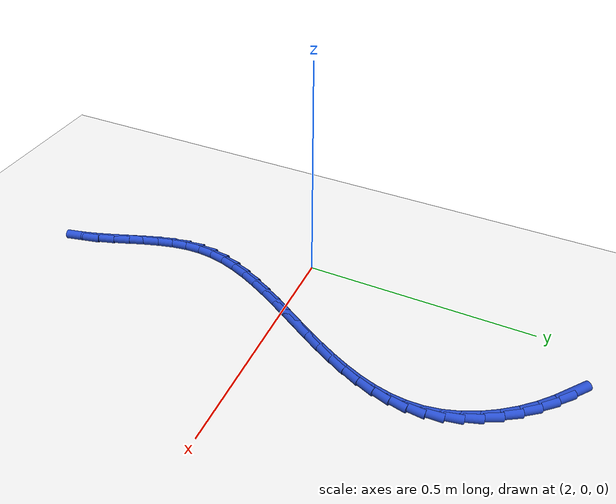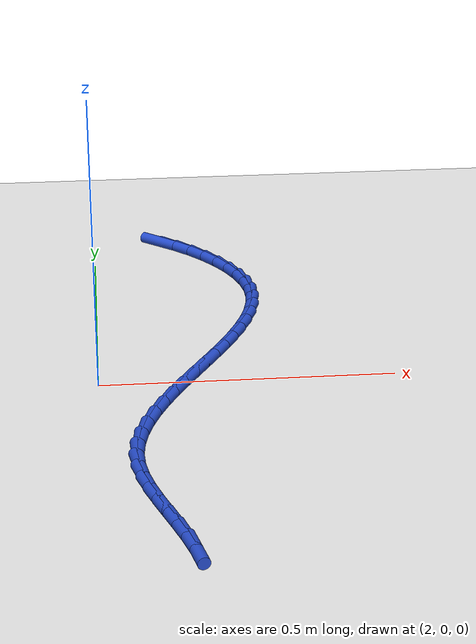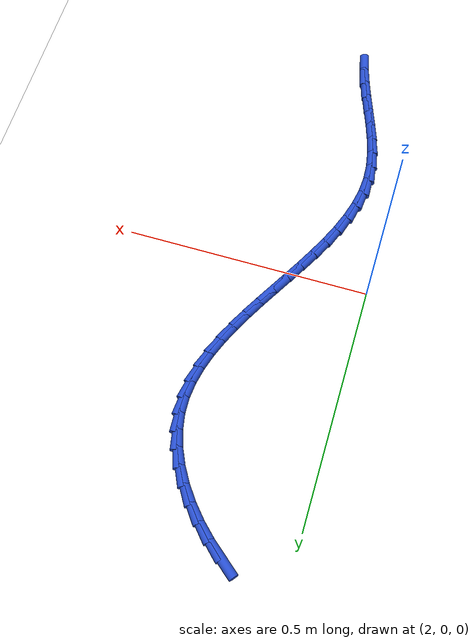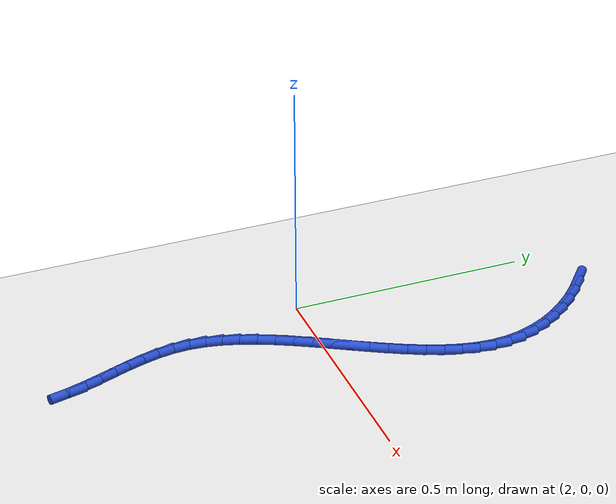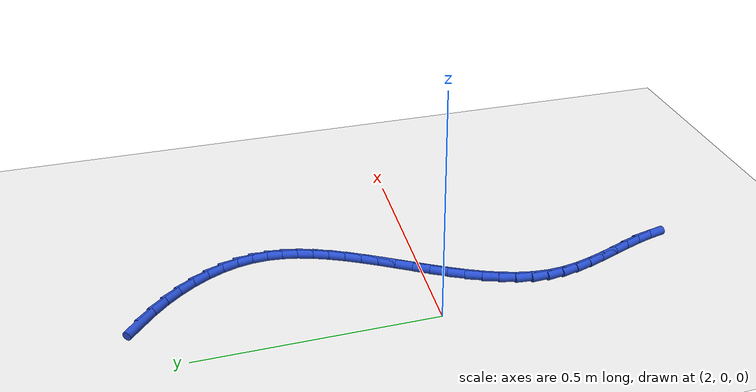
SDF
<sdf version="1.6">
 <world name="default">
  <model name="ground_plane">
   <static>1</static>
   <link name="link">
    <collision name="collision">
     <geometry><plane><normal>0 0 1</normal><size>100 100</size></plane></geometry>
     <surface><friction><ode><mu>100</mu><mu2>50</mu2></ode></friction></surface>
    </collision>
    <visual name="visual">
     <cast_shadows>0</cast_shadows>
     <geometry><plane><normal>0 0 1</normal><size>100 100</size></plane></geometry>
     <material>
      <script><uri>file://media/materials/scripts/gazebo.material</uri><name>Gazebo/WhiteGlow</name></script>
     </material>
    </visual>
   </link>
  </model>
  <model name="line">
   <link name="link_88">
    <pose>2.1271785474607925 0.5868382874427128 0.01 0 1.57 -0.688596215068687</pose>
    <collision name="collision">
     <geometry><cylinder><radius>0.01</radius><length>0.08</length></cylinder></geometry>
    </collision>
    <visual name="visual">
     <material>
      <script><name>Gazebo/Blue</name><uri>file://media/materials/scripts/gazebo.material</uri></script>
     </material>
     <geometry><cylinder><radius>0.01</radius><length>0.08</length></cylinder></geometry>
    </visual>
   </link>
   <link name="link_89">
    <pose>2.1564742898244362 0.5627285119569525 0.01 0 1.57 -0.7649621310855835</pose>
    <collision name="collision">
     <geometry><cylinder><radius>0.01</radius><length>0.08</length></cylinder></geometry>
    </collision>
    <visual name="visual">
     <material>
      <script><name>Gazebo/Blue</name><uri>file://media/materials/scripts/gazebo.material</uri></script>
     </material>
     <geometry><cylinder><radius>0.01</radius><length>0.08</length></cylinder></geometry>
    </visual>
   </link>
   <link name="link_90">
    <pose>2.183848967723012 0.5364504361298772 0.01 0 1.57 -0.8485032546470809</pose>
    <collision name="collision">
     <geometry><cylinder><radius>0.01</radius><length>0.08</length></cylinder></geometry>
    </collision>
    <visual name="visual">
     <material>
      <script><name>Gazebo/Blue</name><uri>file://media/materials/scripts/gazebo.material</uri></script>
     </material>
     <geometry><cylinder><radius>0.01</radius><length>0.08</length></cylinder></geometry>
    </visual>
   </link>
   <link name="link_91">
    <pose>2.208799267518622 0.5081342828745077 0.01 0 1.57 -0.9362140040301882</pose>
    <collision name="collision">
     <geometry><cylinder><radius>0.01</radius><length>0.08</length></cylinder></geometry>
    </collision>
    <visual name="visual">
     <material>
      <script><name>Gazebo/Blue</name><uri>file://media/materials/scripts/gazebo.material</uri></script>
     </material>
     <geometry><cylinder><radius>0.01</radius><length>0.08</length></cylinder></geometry>
    </visual>
   </link>
   <link name="link_92">
    <pose>2.2308876754935523 0.47812924441498517 0.01 0 1.57 -1.030789057519459</pose>
    <collision name="collision">
     <geometry><cylinder><radius>0.01</radius><length>0.08</length></cylinder></geometry>
    </collision>
    <visual name="visual">
     <material>
      <script><name>Gazebo/Blue</name><uri>file://media/materials/scripts/gazebo.material</uri></script>
     </material>
     <geometry><cylinder><radius>0.01</radius><length>0.08</length></cylinder></geometry>
    </visual>
   </link>
   <link name="link_93">
    <pose>2.249676767366114 0.44678481060111047 0.01 0 1.57 -1.135109411028016</pose>
    <collision name="collision">
     <geometry><cylinder><radius>0.01</radius><length>0.08</length></cylinder></geometry>
    </collision>
    <visual name="visual">
     <material>
      <script><name>Gazebo/Blue</name><uri>file://media/materials/scripts/gazebo.material</uri></script>
     </material>
     <geometry><cylinder><radius>0.01</radius><length>0.08</length></cylinder></geometry>
    </visual>
   </link>
   <link name="link_94">
    <pose>2.2647291188546195 0.4144504712826833 0.01 0 1.57 -1.2521440039129987</pose>
    <collision name="collision">
     <geometry><cylinder><radius>0.01</radius><length>0.08</length></cylinder></geometry>
    </collision>
    <visual name="visual">
     <material>
      <script><name>Gazebo/Blue</name><uri>file://media/materials/scripts/gazebo.material</uri></script>
     </material>
     <geometry><cylinder><radius>0.01</radius><length>0.08</length></cylinder></geometry>
    </visual>
   </link>
   <link name="link_95">
    <pose>2.27560730567738 0.3814757163095041 0.01 0 1.57 -1.3845808456315494</pose>
    <collision name="collision">
     <geometry><cylinder><radius>0.01</radius><length>0.08</length></cylinder></geometry>
    </collision>
    <visual name="visual">
     <material>
      <script><name>Gazebo/Blue</name><uri>file://media/materials/scripts/gazebo.material</uri></script>
     </material>
     <geometry><cylinder><radius>0.01</radius><length>0.08</length></cylinder></geometry>
    </visual>
   </link>
   <link name="link_96">
    <pose>2.2818745440784545 0.34820979774798516 0.01 0 1.57 -1.5268475022962134</pose>
    <collision name="collision">
     <geometry><cylinder><radius>0.01</radius><length>0.08</length></cylinder></geometry>
    </collision>
    <visual name="visual">
     <material>
      <script><name>Gazebo/Blue</name><uri>file://media/materials/scripts/gazebo.material</uri></script>
     </material>
     <geometry><cylinder><radius>0.01</radius><length>0.08</length></cylinder></geometry>
    </visual>
   </link>
   <link name="link_97">
    <pose>2.283338927330215 0.31491106157744253 0.01 0 1.57 1.4834201986905355</pose>
    <collision name="collision">
     <geometry><cylinder><radius>0.01</radius><length>0.08</length></cylinder></geometry>
    </collision>
    <visual name="visual">
     <material>
      <script><name>Gazebo/Blue</name><uri>file://media/materials/scripts/gazebo.material</uri></script>
     </material>
     <geometry><cylinder><radius>0.01</radius><length>0.08</length></cylinder></geometry>
    </visual>
   </link>
   <link name="link_98">
    <pose>2.2804217991483062 0.28161019584376645 0.01 0 1.57 1.3698992429816483</pose>
    <collision name="collision">
     <geometry><cylinder><radius>0.01</radius><length>0.08</length></cylinder></geometry>
    </collision>
    <visual name="visual">
     <material>
      <script><name>Gazebo/Blue</name><uri>file://media/materials/scripts/gazebo.material</uri></script>
     </material>
     <geometry><cylinder><radius>0.01</radius><length>0.08</length></cylinder></geometry>
    </visual>
   </link>
   <link name="link_99">
    <pose>2.273638948387314 0.24830282757432248 0.01 0 1.57 1.27556291092709</pose>
    <collision name="collision">
     <geometry><cylinder><radius>0.01</radius><length>0.08</length></cylinder></geometry>
    </collision>
    <visual name="visual">
     <material>
      <script><name>Gazebo/Blue</name><uri>file://media/materials/scripts/gazebo.material</uri></script>
     </material>
     <geometry><cylinder><radius>0.01</radius><length>0.08</length></cylinder></geometry>
    </visual>
   </link>
   <link name="link_100">
    <pose>2.2635061639018264 0.214984583796475 0.01 0 1.57 1.19980329290685</pose>
    <collision name="collision">
     <geometry><cylinder><radius>0.01</radius><length>0.08</length></cylinder></geometry>
    </collision>
    <visual name="visual">
     <material>
      <script><name>Gazebo/Blue</name><uri>file://media/materials/scripts/gazebo.material</uri></script>
     </material>
     <geometry><cylinder><radius>0.01</radius><length>0.08</length></cylinder></geometry>
    </visual>
   </link>
   <link name="link_101">
    <pose>2.250539234546428 0.1816510915375882 0.01 0 1.57 1.141072661619232</pose>
    <collision name="collision">
     <geometry><cylinder><radius>0.01</radius><length>0.08</length></cylinder></geometry>
    </collision>
    <visual name="visual">
     <material>
      <script><name>Gazebo/Blue</name><uri>file://media/materials/scripts/gazebo.material</uri></script>
     </material>
     <geometry><cylinder><radius>0.01</radius><length>0.08</length></cylinder></geometry>
    </visual>
   </link>
   <link name="link_102">
    <pose>2.235253949175705 0.14829797782502765 0.01 0 1.57 1.0976239912985797</pose>
    <collision name="collision">
     <geometry><cylinder><radius>0.01</radius><length>0.08</length></cylinder></geometry>
    </collision>
    <visual name="visual">
     <material>
      <script><name>Gazebo/Blue</name><uri>file://media/materials/scripts/gazebo.material</uri></script>
     </material>
     <geometry><cylinder><radius>0.01</radius><length>0.08</length></cylinder></geometry>
    </visual>
   </link>
   <link name="link_103">
    <pose>2.2181660966442434 0.11492086968615756 0.01 0 1.57 1.0679159006255938</pose>
    <collision name="collision">
     <geometry><cylinder><radius>0.01</radius><length>0.08</length></cylinder></geometry>
    </collision>
    <visual name="visual">
     <material>
      <script><name>Gazebo/Blue</name><uri>file://media/materials/scripts/gazebo.material</uri></script>
     </material>
     <geometry><cylinder><radius>0.01</radius><length>0.08</length></cylinder></geometry>
    </visual>
   </link>
   <link name="link_104">
    <pose>2.199791465806629 0.08151539414834261 0.01 0 1.57 1.0507924036710552</pose>
    <collision name="collision">
     <geometry><cylinder><radius>0.01</radius><length>0.08</length></cylinder></geometry>
    </collision>
    <visual name="visual">
     <material>
      <script><name>Gazebo/Blue</name><uri>file://media/materials/scripts/gazebo.material</uri></script>
     </material>
     <geometry><cylinder><radius>0.01</radius><length>0.08</length></cylinder></geometry>
    </visual>
   </link>
   <link name="link_105">
    <pose>2.1806458455174482 0.048077178238947624 0.01 0 1.57 1.0455449904310146</pose>
    <collision name="collision">
     <geometry><cylinder><radius>0.01</radius><length>0.08</length></cylinder></geometry>
    </collision>
    <visual name="visual">
     <material>
      <script><name>Gazebo/Blue</name><uri>file://media/materials/scripts/gazebo.material</uri></script>
     </material>
     <geometry><cylinder><radius>0.01</radius><length>0.08</length></cylinder></geometry>
    </visual>
   </link>
   <link name="link_106">
    <pose>2.1612450246312873 0.014601848985336383 0.01 0 1.57 1.0519254045728823</pose>
    <collision name="collision">
     <geometry><cylinder><radius>0.01</radius><length>0.08</length></cylinder></geometry>
    </collision>
    <visual name="visual">
     <material>
      <script><name>Gazebo/Blue</name><uri>file://media/materials/scripts/gazebo.material</uri></script>
     </material>
     <geometry><cylinder><radius>0.01</radius><length>0.08</length></cylinder></geometry>
    </visual>
   </link>
   <link name="link_107">
    <pose>2.142104792002731 -0.018914966585124746 0.01 0 1.57 1.0701429780346505</pose>
    <collision name="collision">
     <geometry><cylinder><radius>0.01</radius><length>0.08</length></cylinder></geometry>
    </collision>
    <visual name="visual">
     <material>
      <script><name>Gazebo/Blue</name><uri>file://media/materials/scripts/gazebo.material</uri></script>
     </material>
     <geometry><cylinder><radius>0.01</radius><length>0.08</length></cylinder></geometry>
    </visual>
   </link>
   <link name="link_108">
    <pose>2.1237409364863673 -0.05247764144507192 0.01 0 1.57 1.100855945752654</pose>
    <collision name="collision">
     <geometry><cylinder><radius>0.01</radius><length>0.08</length></cylinder></geometry>
    </collision>
    <visual name="visual">
     <material>
      <script><name>Gazebo/Blue</name><uri>file://media/materials/scripts/gazebo.material</uri></script>
     </material>
     <geometry><cylinder><radius>0.01</radius><length>0.08</length></cylinder></geometry>
    </visual>
   </link>
   <link name="link_109">
    <pose>2.106669246936781 -0.08609054856714045 0.01 0 1.57 1.1451460386002406</pose>
    <collision name="collision">
     <geometry><cylinder><radius>0.01</radius><length>0.08</length></cylinder></geometry>
    </collision>
    <visual name="visual">
     <material>
      <script><name>Gazebo/Blue</name><uri>file://media/materials/scripts/gazebo.material</uri></script>
     </material>
     <geometry><cylinder><radius>0.01</radius><length>0.08</length></cylinder></geometry>
    </visual>
   </link>
   <link name="link_110">
    <pose>2.091405512208558 -0.11975806092396561 0.01 0 1.57 1.2044424744856452</pose>
    <collision name="collision">
     <geometry><cylinder><radius>0.01</radius><length>0.08</length></cylinder></geometry>
    </collision>
    <visual name="visual">
     <material>
      <script><name>Gazebo/Blue</name><uri>file://media/materials/scripts/gazebo.material</uri></script>
     </material>
     <geometry><cylinder><radius>0.01</radius><length>0.08</length></cylinder></geometry>
    </visual>
   </link>
   <link name="link_111">
    <pose>2.0784655211562852 -0.1534845514881827 0.01 0 1.57 1.2803306787076154</pose>
    <collision name="collision">
     <geometry><cylinder><radius>0.01</radius><length>0.08</length></cylinder></geometry>
    </collision>
    <visual name="visual">
     <material>
      <script><name>Gazebo/Blue</name><uri>file://media/materials/scripts/gazebo.material</uri></script>
     </material>
     <geometry><cylinder><radius>0.01</radius><length>0.08</length></cylinder></geometry>
    </visual>
   </link>
   <link name="link_112">
    <pose>2.0683650626345473 -0.1872743932324278 0.01 0 1.57 1.3741499458725963</pose>
    <collision name="collision">
     <geometry><cylinder><radius>0.01</radius><length>0.08</length></cylinder></geometry>
    </collision>
    <visual name="visual">
     <material>
      <script><name>Gazebo/Blue</name><uri>file://media/materials/scripts/gazebo.material</uri></script>
     </material>
     <geometry><cylinder><radius>0.01</radius><length>0.08</length></cylinder></geometry>
    </visual>
   </link>
   <link name="link_113">
    <pose>2.061619925497931 -0.2211319591293347 0.01 0 1.57 1.4862926106542302</pose>
    <collision name="collision">
     <geometry><cylinder><radius>0.01</radius><length>0.08</length></cylinder></geometry>
    </collision>
    <visual name="visual">
     <material>
      <script><name>Gazebo/Blue</name><uri>file://media/materials/scripts/gazebo.material</uri></script>
     </material>
     <geometry><cylinder><radius>0.01</radius><length>0.08</length></cylinder></geometry>
    </visual>
   </link>
   <link name="link_114">
    <pose>2.058745898601023 -0.2550616221515395 0.01 0 1.57 -1.527681448363805</pose>
    <collision name="collision">
     <geometry><cylinder><radius>0.01</radius><length>0.08</length></cylinder></geometry>
    </collision>
    <visual name="visual">
     <material>
      <script><name>Gazebo/Blue</name><uri>file://media/materials/scripts/gazebo.material</uri></script>
     </material>
     <geometry><cylinder><radius>0.01</radius><length>0.08</length></cylinder></geometry>
    </visual>
   </link>
   <link name="link_115">
    <pose>2.0602129889022796 -0.28906800666263005 0.01 0 1.57 -1.410283058895095</pose>
    <collision name="collision">
     <geometry><cylinder><radius>0.01</radius><length>0.08</length></cylinder></geometry>
    </collision>
    <visual name="visual">
     <material>
      <script><name>Gazebo/Blue</name><uri>file://media/materials/scripts/gazebo.material</uri></script>
     </material>
     <geometry><cylinder><radius>0.01</radius><length>0.08</length></cylinder></geometry>
    </visual>
   </link>
   <link name="link_116">
    <pose>2.0657326760879715 -0.323159902141878 0.01 0 1.57 -1.3227255762940087</pose>
    <collision name="collision">
     <geometry><cylinder><radius>0.01</radius><length>0.08</length></cylinder></geometry>
    </collision>
    <visual name="visual">
     <material>
      <script><name>Gazebo/Blue</name><uri>file://media/materials/scripts/gazebo.material</uri></script>
     </material>
     <geometry><cylinder><radius>0.01</radius><length>0.08</length></cylinder></geometry>
    </visual>
   </link>
   <link name="link_117">
    <pose>2.0743924934856635 -0.35734952419291416 0.01 0 1.57 -1.2639245569333988</pose>
    <collision name="collision">
     <geometry><cylinder><radius>0.01</radius><length>0.08</length></cylinder></geometry>
    </collision>
    <visual name="visual">
     <material>
      <script><name>Gazebo/Blue</name><uri>file://media/materials/scripts/gazebo.material</uri></script>
     </material>
     <geometry><cylinder><radius>0.01</radius><length>0.08</length></cylinder></geometry>
    </visual>
   </link>
   <link name="link_118">
    <pose>2.0852614309942177 -0.3916491902423733 0.01 0 1.57 -1.2315528829271254</pose>
    <collision name="collision">
     <geometry><cylinder><radius>0.01</radius><length>0.08</length></cylinder></geometry>
    </collision>
    <visual name="visual">
     <material>
      <script><name>Gazebo/Blue</name><uri>file://media/materials/scripts/gazebo.material</uri></script>
     </material>
     <geometry><cylinder><radius>0.01</radius><length>0.08</length></cylinder></geometry>
    </visual>
   </link>
   <link name="link_119">
    <pose>2.0974084785124987 -0.42607121771689144 0.01 0 1.57 -1.2238649001833684</pose>
    <collision name="collision">
     <geometry><cylinder><radius>0.01</radius><length>0.08</length></cylinder></geometry>
    </collision>
    <visual name="visual">
     <material>
      <script><name>Gazebo/Blue</name><uri>file://media/materials/scripts/gazebo.material</uri></script>
     </material>
     <geometry><cylinder><radius>0.01</radius><length>0.08</length></cylinder></geometry>
    </visual>
   </link>
   <link name="link_120">
    <pose>2.1099026259393696 -0.46062792404310193 0.01 0 1.57 -1.2401941057059491</pose>
    <collision name="collision">
     <geometry><cylinder><radius>0.01</radius><length>0.08</length></cylinder></geometry>
    </collision>
    <visual name="visual">
     <material>
      <script><name>Gazebo/Blue</name><uri>file://media/materials/scripts/gazebo.material</uri></script>
     </material>
     <geometry><cylinder><radius>0.01</radius><length>0.08</length></cylinder></geometry>
    </visual>
   </link>
   <link name="link_121">
    <pose>2.121812863173695 -0.4953316266476406 0.01 0 1.57 -1.2810137080686268</pose>
    <collision name="collision">
     <geometry><cylinder><radius>0.01</radius><length>0.08</length></cylinder></geometry>
    </collision>
    <visual name="visual">
     <material>
      <script><name>Gazebo/Blue</name><uri>file://media/materials/scripts/gazebo.material</uri></script>
     </material>
     <geometry><cylinder><radius>0.01</radius><length>0.08</length></cylinder></geometry>
    </visual>
   </link>
   <link name="link_122">
    <pose>2.1322081801143375 -0.5301946429571426 0.01 0 1.57 -1.3476734948573184</pose>
    <collision name="collision">
     <geometry><cylinder><radius>0.01</radius><length>0.08</length></cylinder></geometry>
    </collision>
    <visual name="visual">
     <material>
      <script><name>Gazebo/Blue</name><uri>file://media/materials/scripts/gazebo.material</uri></script>
     </material>
     <geometry><cylinder><radius>0.01</radius><length>0.08</length></cylinder></geometry>
    </visual>
   </link>
  </model>
 </world>
</sdf>
